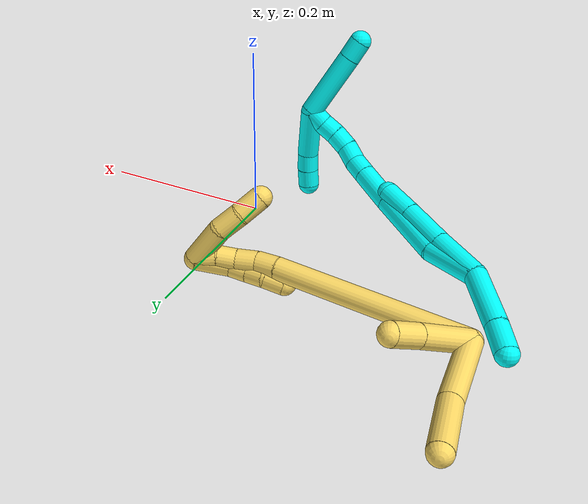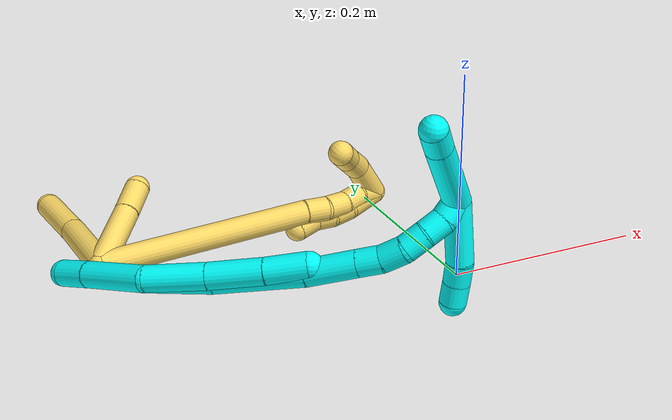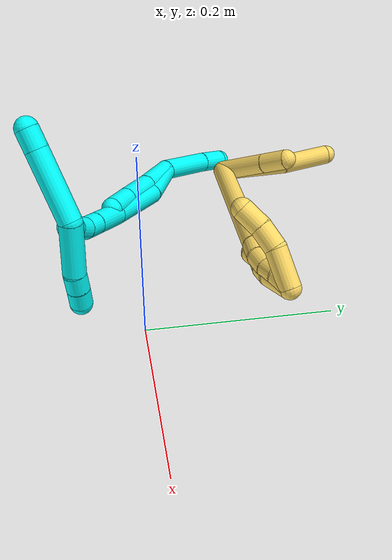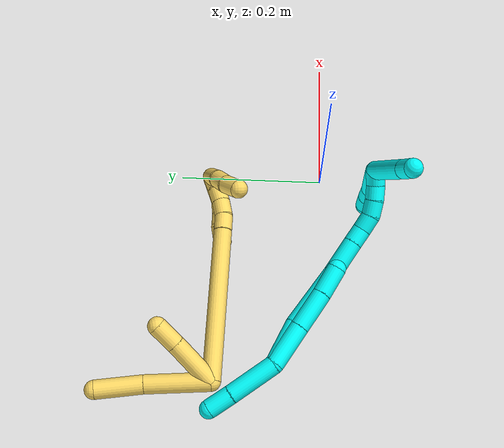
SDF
<sdf version="1.7">
 <world name="default">
  <model name="3">
   <static>0</static>
   <link name="3">
    <collision name="collision-cylinder-e_1_2_8">
     <pose>0.025323 -0.012036 0.007532 1.01166 1.05978 0.627476</pose>
     <geometry><cylinder><radius>0.0125</radius><length>0.058064</length></cylinder></geometry>
     <surface>
      <friction><ode><mu>1.16</mu><mu2>1.16</mu2><slip1>0</slip1><slip2>0</slip2></ode></friction>
      <contact><ode><kp>1e+06</kp><kd>1</kd><max_vel>0</max_vel><min_depth>0.001</min_depth></ode></contact>
     </surface>
    </collision>
    <visual name="visual-cylinder-e_1_2_8">
     <pose>0.025323 -0.012036 0.007532 1.01166 1.05978 0.627476</pose>
     <geometry><cylinder><radius>0.0125</radius><length>0.058064</length></cylinder></geometry>
     <material><ambient>0.003922 1 0.996078 1</ambient></material>
    </visual>
    <collision name="collision-cylinder-e_2_8_9">
     <pose>0.07329 -0.034726 0.023024 0.92907 1.03976 0.558674</pose>
     <geometry><cylinder><radius>0.0125</radius><length>0.052521</length></cylinder></geometry>
     <surface>
      <friction><ode><mu>1.16</mu><mu2>1.16</mu2><slip1>0</slip1><slip2>0</slip2></ode></friction>
      <contact><ode><kp>1e+06</kp><kd>1</kd><max_vel>0</max_vel><min_depth>0.001</min_depth></ode></contact>
     </surface>
    </collision>
    <visual name="visual-cylinder-e_2_8_9">
     <pose>0.07329 -0.034726 0.023024 0.92907 1.03976 0.558674</pose>
     <geometry><cylinder><radius>0.0125</radius><length>0.052521</length></cylinder></geometry>
     <material><ambient>0.003922 1 0.996078 1</ambient></material>
    </visual>
    <collision name="collision-cylinder-e_3_9_6">
     <pose>0.113287 -0.05231 0.037248 0.835982 1.07694 0.518693</pose>
     <geometry><cylinder><radius>0.0125</radius><length>0.039415</length></cylinder></geometry>
     <surface>
      <friction><ode><mu>1.16</mu><mu2>1.16</mu2><slip1>0</slip1><slip2>0</slip2></ode></friction>
      <contact><ode><kp>1e+06</kp><kd>1</kd><max_vel>0</max_vel><min_depth>0.001</min_depth></ode></contact>
     </surface>
    </collision>
    <visual name="visual-cylinder-e_3_9_6">
     <pose>0.113287 -0.05231 0.037248 0.835982 1.07694 0.518693</pose>
     <geometry><cylinder><radius>0.0125</radius><length>0.039415</length></cylinder></geometry>
     <material><ambient>0.003922 1 0.996078 1</ambient></material>
    </visual>
    <collision name="collision-cylinder-e_1_2_10">
     <pose>-0.020616 0.02286 -0.012898 -2.08447 -0.66581 1.06917</pose>
     <geometry><cylinder><radius>0.0125</radius><length>0.066752</length></cylinder></geometry>
     <surface>
      <friction><ode><mu>1.16</mu><mu2>1.16</mu2><slip1>0</slip1><slip2>0</slip2></ode></friction>
      <contact><ode><kp>1e+06</kp><kd>1</kd><max_vel>0</max_vel><min_depth>0.001</min_depth></ode></contact>
     </surface>
    </collision>
    <visual name="visual-cylinder-e_1_2_10">
     <pose>-0.020616 0.02286 -0.012898 -2.08447 -0.66581 1.06917</pose>
     <geometry><cylinder><radius>0.0125</radius><length>0.066752</length></cylinder></geometry>
     <material><ambient>0.003922 1 0.996078 1</ambient></material>
    </visual>
    <collision name="collision-cylinder-e_2_10_5">
     <pose>-0.05097 0.057222 -0.032812 -2.11855 -0.625836 1.04572</pose>
     <geometry><cylinder><radius>0.0125</radius><length>0.033248</length></cylinder></geometry>
     <surface>
      <friction><ode><mu>1.16</mu><mu2>1.16</mu2><slip1>0</slip1><slip2>0</slip2></ode></friction>
      <contact><ode><kp>1e+06</kp><kd>1</kd><max_vel>0</max_vel><min_depth>0.001</min_depth></ode></contact>
     </surface>
    </collision>
    <visual name="visual-cylinder-e_2_10_5">
     <pose>-0.05097 0.057222 -0.032812 -2.11855 -0.625836 1.04572</pose>
     <geometry><cylinder><radius>0.0125</radius><length>0.033248</length></cylinder></geometry>
     <material><ambient>0.003922 1 0.996078 1</ambient></material>
    </visual>
    <collision name="collision-cylinder-e_1_2_11">
     <pose>0.02867 -0.009951 0.002819 1.29476 1.22458 0.976299</pose>
     <geometry><cylinder><radius>0.0125</radius><length>0.060958</length></cylinder></geometry>
     <surface>
      <friction><ode><mu>1.16</mu><mu2>1.16</mu2><slip1>0</slip1><slip2>0</slip2></ode></friction>
      <contact><ode><kp>1e+06</kp><kd>1</kd><max_vel>0</max_vel><min_depth>0.001</min_depth></ode></contact>
     </surface>
    </collision>
    <visual name="visual-cylinder-e_1_2_11">
     <pose>0.02867 -0.009951 0.002819 1.29476 1.22458 0.976299</pose>
     <geometry><cylinder><radius>0.0125</radius><length>0.060958</length></cylinder></geometry>
     <material><ambient>0.003922 1 0.996078 1</ambient></material>
    </visual>
    <collision name="collision-cylinder-e_2_11_12">
     <pose>0.093212 -0.038764 0.019649 0.931894 0.990922 0.530716</pose>
     <geometry><cylinder><radius>0.0125</radius><length>0.085763</length></cylinder></geometry>
     <surface>
      <friction><ode><mu>1.16</mu><mu2>1.16</mu2><slip1>0</slip1><slip2>0</slip2></ode></friction>
      <contact><ode><kp>1e+06</kp><kd>1</kd><max_vel>0</max_vel><min_depth>0.001</min_depth></ode></contact>
     </surface>
    </collision>
    <visual name="visual-cylinder-e_2_11_12">
     <pose>0.093212 -0.038764 0.019649 0.931894 0.990922 0.530716</pose>
     <geometry><cylinder><radius>0.0125</radius><length>0.085763</length></cylinder></geometry>
     <material><ambient>0.003922 1 0.996078 1</ambient></material>
    </visual>
    <collision name="collision-cylinder-e_3_12_13">
     <pose>0.148886 -0.066614 0.043344 0.748189 0.982352 0.413968</pose>
     <geometry><cylinder><radius>0.0125</radius><length>0.047612</length></cylinder></geometry>
     <surface>
      <friction><ode><mu>1.16</mu><mu2>1.16</mu2><slip1>0</slip1><slip2>0</slip2></ode></friction>
      <contact><ode><kp>1e+06</kp><kd>1</kd><max_vel>0</max_vel><min_depth>0.001</min_depth></ode></contact>
     </surface>
    </collision>
    <visual name="visual-cylinder-e_3_12_13">
     <pose>0.148886 -0.066614 0.043344 0.748189 0.982352 0.413968</pose>
     <geometry><cylinder><radius>0.0125</radius><length>0.047612</length></cylinder></geometry>
     <material><ambient>0.003922 1 0.996078 1</ambient></material>
    </visual>
    <collision name="collision-cylinder-e_4_13_14">
     <pose>0.177772 -0.079928 0.057517 0.766842 0.969488 0.418665</pose>
     <geometry><cylinder><radius>0.0125</radius><length>0.022032</length></cylinder></geometry>
     <surface>
      <friction><ode><mu>1.16</mu><mu2>1.16</mu2><slip1>0</slip1><slip2>0</slip2></ode></friction>
      <contact><ode><kp>1e+06</kp><kd>1</kd><max_vel>0</max_vel><min_depth>0.001</min_depth></ode></contact>
     </surface>
    </collision>
    <visual name="visual-cylinder-e_4_13_14">
     <pose>0.177772 -0.079928 0.057517 0.766842 0.969488 0.418665</pose>
     <geometry><cylinder><radius>0.0125</radius><length>0.022032</length></cylinder></geometry>
     <material><ambient>0.003922 1 0.996078 1</ambient></material>
    </visual>
    <collision name="collision-cylinder-e_5_14_15">
     <pose>0.194886 -0.087643 0.068852 0.459745 0.810201 0.200025</pose>
     <geometry><cylinder><radius>0.0125</radius><length>0.022169</length></cylinder></geometry>
     <surface>
      <friction><ode><mu>1.16</mu><mu2>1.16</mu2><slip1>0</slip1><slip2>0</slip2></ode></friction>
      <contact><ode><kp>1e+06</kp><kd>1</kd><max_vel>0</max_vel><min_depth>0.001</min_depth></ode></contact>
     </surface>
    </collision>
    <visual name="visual-cylinder-e_5_14_15">
     <pose>0.194886 -0.087643 0.068852 0.459745 0.810201 0.200025</pose>
     <geometry><cylinder><radius>0.0125</radius><length>0.022169</length></cylinder></geometry>
     <material><ambient>0.003922 1 0.996078 1</ambient></material>
    </visual>
    <collision name="collision-cylinder-e_6_15_16">
     <pose>0.211259 -0.090682 0.082327 -0.053058 0.898822 -0.025596</pose>
     <geometry><cylinder><radius>0.0125</radius><length>0.021322</length></cylinder></geometry>
     <surface>
      <friction><ode><mu>1.16</mu><mu2>1.16</mu2><slip1>0</slip1><slip2>0</slip2></ode></friction>
      <contact><ode><kp>1e+06</kp><kd>1</kd><max_vel>0</max_vel><min_depth>0.001</min_depth></ode></contact>
     </surface>
    </collision>
    <visual name="visual-cylinder-e_6_15_16">
     <pose>0.211259 -0.090682 0.082327 -0.053058 0.898822 -0.025596</pose>
     <geometry><cylinder><radius>0.0125</radius><length>0.021322</length></cylinder></geometry>
     <material><ambient>0.003922 1 0.996078 1</ambient></material>
    </visual>
    <collision name="collision-cylinder-e_7_16_17">
     <pose>0.227948 -0.088816 0.094256 -0.278111 0.987013 -0.150284</pose>
     <geometry><cylinder><radius>0.0125</radius><length>0.020005</length></cylinder></geometry>
     <surface>
      <friction><ode><mu>1.16</mu><mu2>1.16</mu2><slip1>0</slip1><slip2>0</slip2></ode></friction>
      <contact><ode><kp>1e+06</kp><kd>1</kd><max_vel>0</max_vel><min_depth>0.001</min_depth></ode></contact>
     </surface>
    </collision>
    <visual name="visual-cylinder-e_7_16_17">
     <pose>0.227948 -0.088816 0.094256 -0.278111 0.987013 -0.150284</pose>
     <geometry><cylinder><radius>0.0125</radius><length>0.020005</length></cylinder></geometry>
     <material><ambient>0.003922 1 0.996078 1</ambient></material>
    </visual>
    <collision name="collision-cylinder-e_8_17_1">
     <pose>0.242881 -0.083907 0.106374 -0.462123 0.713123 -0.174817</pose>
     <geometry><cylinder><radius>0.0125</radius><length>0.020139</length></cylinder></geometry>
     <surface>
      <friction><ode><mu>1.16</mu><mu2>1.16</mu2><slip1>0</slip1><slip2>0</slip2></ode></friction>
      <contact><ode><kp>1e+06</kp><kd>1</kd><max_vel>0</max_vel><min_depth>0.001</min_depth></ode></contact>
     </surface>
    </collision>
    <visual name="visual-cylinder-e_8_17_1">
     <pose>0.242881 -0.083907 0.106374 -0.462123 0.713123 -0.174817</pose>
     <geometry><cylinder><radius>0.0125</radius><length>0.020139</length></cylinder></geometry>
     <material><ambient>0.003922 1 0.996078 1</ambient></material>
    </visual>
    <collision name="collision-cylinder-e_1_1_18">
     <pose>0.253194 -0.087694 0.084964 2.89244 0.127195 0.940947</pose>
     <geometry><cylinder><radius>0.0125</radius><length>0.058729</length></cylinder></geometry>
     <surface>
      <friction><ode><mu>1.16</mu><mu2>1.16</mu2><slip1>0</slip1><slip2>0</slip2></ode></friction>
      <contact><ode><kp>1e+06</kp><kd>1</kd><max_vel>0</max_vel><min_depth>0.001</min_depth></ode></contact>
     </surface>
    </collision>
    <visual name="visual-cylinder-e_1_1_18">
     <pose>0.253194 -0.087694 0.084964 2.89244 0.127195 0.940947</pose>
     <geometry><cylinder><radius>0.0125</radius><length>0.058729</length></cylinder></geometry>
     <material><ambient>0.003922 1 0.996078 1</ambient></material>
    </visual>
    <collision name="collision-cylinder-e_2_18_19">
     <pose>0.256719 -0.096238 0.046439 3.01008 -0.01926 -0.290429</pose>
     <geometry><cylinder><radius>0.0125</radius><length>0.020777</length></cylinder></geometry>
     <surface>
      <friction><ode><mu>1.16</mu><mu2>1.16</mu2><slip1>0</slip1><slip2>0</slip2></ode></friction>
      <contact><ode><kp>1e+06</kp><kd>1</kd><max_vel>0</max_vel><min_depth>0.001</min_depth></ode></contact>
     </surface>
    </collision>
    <visual name="visual-cylinder-e_2_18_19">
     <pose>0.256719 -0.096238 0.046439 3.01008 -0.01926 -0.290429</pose>
     <geometry><cylinder><radius>0.0125</radius><length>0.020777</length></cylinder></geometry>
     <material><ambient>0.003922 1 0.996078 1</ambient></material>
    </visual>
    <collision name="collision-cylinder-e_3_19_4">
     <pose>0.255846 -0.099308 0.026061 2.9737 -0.065627 -0.743908</pose>
     <geometry><cylinder><radius>0.0125</radius><length>0.020495</length></cylinder></geometry>
     <surface>
      <friction><ode><mu>1.16</mu><mu2>1.16</mu2><slip1>0</slip1><slip2>0</slip2></ode></friction>
      <contact><ode><kp>1e+06</kp><kd>1</kd><max_vel>0</max_vel><min_depth>0.001</min_depth></ode></contact>
     </surface>
    </collision>
    <visual name="visual-cylinder-e_3_19_4">
     <pose>0.255846 -0.099308 0.026061 2.9737 -0.065627 -0.743908</pose>
     <geometry><cylinder><radius>0.0125</radius><length>0.020495</length></cylinder></geometry>
     <material><ambient>0.003922 1 0.996078 1</ambient></material>
    </visual>
    <collision name="collision-cylinder-e_1_1_20">
     <pose>0.231598 -0.08729 0.14688 0.198568 -0.479552 -0.048696</pose>
     <geometry><cylinder><radius>0.0125</radius><length>0.077465</length></cylinder></geometry>
     <surface>
      <friction><ode><mu>1.16</mu><mu2>1.16</mu2><slip1>0</slip1><slip2>0</slip2></ode></friction>
      <contact><ode><kp>1e+06</kp><kd>1</kd><max_vel>0</max_vel><min_depth>0.001</min_depth></ode></contact>
     </surface>
    </collision>
    <visual name="visual-cylinder-e_1_1_20">
     <pose>0.231598 -0.08729 0.14688 0.198568 -0.479552 -0.048696</pose>
     <geometry><cylinder><radius>0.0125</radius><length>0.077465</length></cylinder></geometry>
     <material><ambient>0.003922 1 0.996078 1</ambient></material>
    </visual>
    <collision name="collision-cylinder-e_2_20_3">
     <pose>0.208794 -0.096051 0.190502 0.196962 -0.453196 -0.045551</pose>
     <geometry><cylinder><radius>0.0125</radius><length>0.022535</length></cylinder></geometry>
     <surface>
      <friction><ode><mu>1.16</mu><mu2>1.16</mu2><slip1>0</slip1><slip2>0</slip2></ode></friction>
      <contact><ode><kp>1e+06</kp><kd>1</kd><max_vel>0</max_vel><min_depth>0.001</min_depth></ode></contact>
     </surface>
    </collision>
    <visual name="visual-cylinder-e_2_20_3">
     <pose>0.208794 -0.096051 0.190502 0.196962 -0.453196 -0.045551</pose>
     <geometry><cylinder><radius>0.0125</radius><length>0.022535</length></cylinder></geometry>
     <material><ambient>0.003922 1 0.996078 1</ambient></material>
    </visual>
    <collision name="collision-sphere-3">
     <pose>0.203861 -0.098034 0.200437 0 -0 0</pose>
     <geometry><sphere><radius>0.0125</radius></sphere></geometry>
     <surface>
      <friction><ode><mu>1.16</mu><mu2>1.16</mu2><slip1>0</slip1><slip2>0</slip2></ode></friction>
      <contact><ode><kp>1e+06</kp><kd>1</kd><max_vel>0</max_vel><min_depth>0.001</min_depth></ode></contact>
     </surface>
    </collision>
    <visual name="visual-sphere-3">
     <pose>0.203861 -0.098034 0.200437 0 -0 0</pose>
     <geometry><sphere><radius>0.0125</radius></sphere></geometry>
     <material><ambient>0.003922 1 0.996078 1</ambient></material>
    </visual>
    <collision name="collision-sphere-20">
     <pose>0.213728 -0.094069 0.180568 0 -0 0</pose>
     <geometry><sphere><radius>0.0125</radius></sphere></geometry>
     <surface>
      <friction><ode><mu>1.16</mu><mu2>1.16</mu2><slip1>0</slip1><slip2>0</slip2></ode></friction>
      <contact><ode><kp>1e+06</kp><kd>1</kd><max_vel>0</max_vel><min_depth>0.001</min_depth></ode></contact>
     </surface>
    </collision>
    <visual name="visual-sphere-20">
     <pose>0.213728 -0.094069 0.180568 0 -0 0</pose>
     <geometry><sphere><radius>0.0125</radius></sphere></geometry>
     <material><ambient>0.003922 1 0.996078 1</ambient></material>
    </visual>
    <collision name="collision-sphere-4">
     <pose>0.255174 -0.101017 0.01598 0 -0 0</pose>
     <geometry><sphere><radius>0.0125</radius></sphere></geometry>
     <surface>
      <friction><ode><mu>1.16</mu><mu2>1.16</mu2><slip1>0</slip1><slip2>0</slip2></ode></friction>
      <contact><ode><kp>1e+06</kp><kd>1</kd><max_vel>0</max_vel><min_depth>0.001</min_depth></ode></contact>
     </surface>
    </collision>
    <visual name="visual-sphere-4">
     <pose>0.255174 -0.101017 0.01598 0 -0 0</pose>
     <geometry><sphere><radius>0.0125</radius></sphere></geometry>
     <material><ambient>0.003922 1 0.996078 1</ambient></material>
    </visual>
    <collision name="collision-sphere-5">
     <pose>-0.060708 0.068724 -0.039828 0 -0 0</pose>
     <geometry><sphere><radius>0.0125</radius></sphere></geometry>
     <surface>
      <friction><ode><mu>1.16</mu><mu2>1.16</mu2><slip1>0</slip1><slip2>0</slip2></ode></friction>
      <contact><ode><kp>1e+06</kp><kd>1</kd><max_vel>0</max_vel><min_depth>0.001</min_depth></ode></contact>
     </surface>
    </collision>
    <visual name="visual-sphere-5">
     <pose>-0.060708 0.068724 -0.039828 0 -0 0</pose>
     <geometry><sphere><radius>0.0125</radius></sphere></geometry>
     <material><ambient>0.003922 1 0.996078 1</ambient></material>
    </visual>
    <collision name="collision-sphere-10">
     <pose>-0.041233 0.04572 -0.025795 0 -0 0</pose>
     <geometry><sphere><radius>0.0125</radius></sphere></geometry>
     <surface>
      <friction><ode><mu>1.16</mu><mu2>1.16</mu2><slip1>0</slip1><slip2>0</slip2></ode></friction>
      <contact><ode><kp>1e+06</kp><kd>1</kd><max_vel>0</max_vel><min_depth>0.001</min_depth></ode></contact>
     </surface>
    </collision>
    <visual name="visual-sphere-10">
     <pose>-0.041233 0.04572 -0.025795 0 -0 0</pose>
     <geometry><sphere><radius>0.0125</radius></sphere></geometry>
     <material><ambient>0.003922 1 0.996078 1</ambient></material>
    </visual>
    <collision name="collision-sphere-6">
     <pose>0.130639 -0.059242 0.043511 0 -0 0</pose>
     <geometry><sphere><radius>0.0125</radius></sphere></geometry>
     <surface>
      <friction><ode><mu>1.16</mu><mu2>1.16</mu2><slip1>0</slip1><slip2>0</slip2></ode></friction>
      <contact><ode><kp>1e+06</kp><kd>1</kd><max_vel>0</max_vel><min_depth>0.001</min_depth></ode></contact>
     </surface>
    </collision>
    <visual name="visual-sphere-6">
     <pose>0.130639 -0.059242 0.043511 0 -0 0</pose>
     <geometry><sphere><radius>0.0125</radius></sphere></geometry>
     <material><ambient>0.003922 1 0.996078 1</ambient></material>
    </visual>
    <collision name="collision-sphere-9">
     <pose>0.095934 -0.045379 0.030984 0 -0 0</pose>
     <geometry><sphere><radius>0.0125</radius></sphere></geometry>
     <surface>
      <friction><ode><mu>1.16</mu><mu2>1.16</mu2><slip1>0</slip1><slip2>0</slip2></ode></friction>
      <contact><ode><kp>1e+06</kp><kd>1</kd><max_vel>0</max_vel><min_depth>0.001</min_depth></ode></contact>
     </surface>
    </collision>
    <visual name="visual-sphere-9">
     <pose>0.095934 -0.045379 0.030984 0 -0 0</pose>
     <geometry><sphere><radius>0.0125</radius></sphere></geometry>
     <material><ambient>0.003922 1 0.996078 1</ambient></material>
    </visual>
    <collision name="collision-sphere-2">
     <geometry><sphere><radius>0.0125</radius></sphere></geometry>
     <surface>
      <friction><ode><mu>1.16</mu><mu2>1.16</mu2><slip1>0</slip1><slip2>0</slip2></ode></friction>
      <contact><ode><kp>1e+06</kp><kd>1</kd><max_vel>0</max_vel><min_depth>0.001</min_depth></ode></contact>
     </surface>
    </collision>
    <visual name="visual-sphere-2">
     <geometry><sphere><radius>0.0125</radius></sphere></geometry>
     <material><ambient>0.003922 1 0.996078 1</ambient></material>
    </visual>
    <collision name="collision-sphere-19">
     <pose>0.256518 -0.0976 0.036143 0 -0 0</pose>
     <geometry><sphere><radius>0.0125</radius></sphere></geometry>
     <surface>
      <friction><ode><mu>1.16</mu><mu2>1.16</mu2><slip1>0</slip1><slip2>0</slip2></ode></friction>
      <contact><ode><kp>1e+06</kp><kd>1</kd><max_vel>0</max_vel><min_depth>0.001</min_depth></ode></contact>
     </surface>
    </collision>
    <visual name="visual-sphere-19">
     <pose>0.256518 -0.0976 0.036143 0 -0 0</pose>
     <geometry><sphere><radius>0.0125</radius></sphere></geometry>
     <material><ambient>0.003922 1 0.996078 1</ambient></material>
    </visual>
    <collision name="collision-sphere-8">
     <pose>0.050646 -0.024072 0.015063 0 -0 0</pose>
     <geometry><sphere><radius>0.0125</radius></sphere></geometry>
     <surface>
      <friction><ode><mu>1.16</mu><mu2>1.16</mu2><slip1>0</slip1><slip2>0</slip2></ode></friction>
      <contact><ode><kp>1e+06</kp><kd>1</kd><max_vel>0</max_vel><min_depth>0.001</min_depth></ode></contact>
     </surface>
    </collision>
    <visual name="visual-sphere-8">
     <pose>0.050646 -0.024072 0.015063 0 -0 0</pose>
     <geometry><sphere><radius>0.0125</radius></sphere></geometry>
     <material><ambient>0.003922 1 0.996078 1</ambient></material>
    </visual>
    <collision name="collision-sphere-11">
     <pose>0.057341 -0.019903 0.005638 0 -0 0</pose>
     <geometry><sphere><radius>0.0125</radius></sphere></geometry>
     <surface>
      <friction><ode><mu>1.16</mu><mu2>1.16</mu2><slip1>0</slip1><slip2>0</slip2></ode></friction>
      <contact><ode><kp>1e+06</kp><kd>1</kd><max_vel>0</max_vel><min_depth>0.001</min_depth></ode></contact>
     </surface>
    </collision>
    <visual name="visual-sphere-11">
     <pose>0.057341 -0.019903 0.005638 0 -0 0</pose>
     <geometry><sphere><radius>0.0125</radius></sphere></geometry>
     <material><ambient>0.003922 1 0.996078 1</ambient></material>
    </visual>
    <collision name="collision-sphere-12">
     <pose>0.129084 -0.057625 0.033659 0 -0 0</pose>
     <geometry><sphere><radius>0.0125</radius></sphere></geometry>
     <surface>
      <friction><ode><mu>1.16</mu><mu2>1.16</mu2><slip1>0</slip1><slip2>0</slip2></ode></friction>
      <contact><ode><kp>1e+06</kp><kd>1</kd><max_vel>0</max_vel><min_depth>0.001</min_depth></ode></contact>
     </surface>
    </collision>
    <visual name="visual-sphere-12">
     <pose>0.129084 -0.057625 0.033659 0 -0 0</pose>
     <geometry><sphere><radius>0.0125</radius></sphere></geometry>
     <material><ambient>0.003922 1 0.996078 1</ambient></material>
    </visual>
    <collision name="collision-sphere-13">
     <pose>0.168688 -0.075604 0.053029 0 -0 0</pose>
     <geometry><sphere><radius>0.0125</radius></sphere></geometry>
     <surface>
      <friction><ode><mu>1.16</mu><mu2>1.16</mu2><slip1>0</slip1><slip2>0</slip2></ode></friction>
      <contact><ode><kp>1e+06</kp><kd>1</kd><max_vel>0</max_vel><min_depth>0.001</min_depth></ode></contact>
     </surface>
    </collision>
    <visual name="visual-sphere-13">
     <pose>0.168688 -0.075604 0.053029 0 -0 0</pose>
     <geometry><sphere><radius>0.0125</radius></sphere></geometry>
     <material><ambient>0.003922 1 0.996078 1</ambient></material>
    </visual>
    <collision name="collision-sphere-14">
     <pose>0.186856 -0.084253 0.062005 0 -0 0</pose>
     <geometry><sphere><radius>0.0125</radius></sphere></geometry>
     <surface>
      <friction><ode><mu>1.16</mu><mu2>1.16</mu2><slip1>0</slip1><slip2>0</slip2></ode></friction>
      <contact><ode><kp>1e+06</kp><kd>1</kd><max_vel>0</max_vel><min_depth>0.001</min_depth></ode></contact>
     </surface>
    </collision>
    <visual name="visual-sphere-14">
     <pose>0.186856 -0.084253 0.062005 0 -0 0</pose>
     <geometry><sphere><radius>0.0125</radius></sphere></geometry>
     <material><ambient>0.003922 1 0.996078 1</ambient></material>
    </visual>
    <collision name="collision-sphere-15">
     <pose>0.202916 -0.091034 0.0757 0 -0 0</pose>
     <geometry><sphere><radius>0.0125</radius></sphere></geometry>
     <surface>
      <friction><ode><mu>1.16</mu><mu2>1.16</mu2><slip1>0</slip1><slip2>0</slip2></ode></friction>
      <contact><ode><kp>1e+06</kp><kd>1</kd><max_vel>0</max_vel><min_depth>0.001</min_depth></ode></contact>
     </surface>
    </collision>
    <visual name="visual-sphere-15">
     <pose>0.202916 -0.091034 0.0757 0 -0 0</pose>
     <geometry><sphere><radius>0.0125</radius></sphere></geometry>
     <material><ambient>0.003922 1 0.996078 1</ambient></material>
    </visual>
    <collision name="collision-sphere-16">
     <pose>0.219602 -0.09033 0.088955 0 -0 0</pose>
     <geometry><sphere><radius>0.0125</radius></sphere></geometry>
     <surface>
      <friction><ode><mu>1.16</mu><mu2>1.16</mu2><slip1>0</slip1><slip2>0</slip2></ode></friction>
      <contact><ode><kp>1e+06</kp><kd>1</kd><max_vel>0</max_vel><min_depth>0.001</min_depth></ode></contact>
     </surface>
    </collision>
    <visual name="visual-sphere-16">
     <pose>0.219602 -0.09033 0.088955 0 -0 0</pose>
     <geometry><sphere><radius>0.0125</radius></sphere></geometry>
     <material><ambient>0.003922 1 0.996078 1</ambient></material>
    </visual>
    <collision name="collision-sphere-17">
     <pose>0.236294 -0.087303 0.099557 0 -0 0</pose>
     <geometry><sphere><radius>0.0125</radius></sphere></geometry>
     <surface>
      <friction><ode><mu>1.16</mu><mu2>1.16</mu2><slip1>0</slip1><slip2>0</slip2></ode></friction>
      <contact><ode><kp>1e+06</kp><kd>1</kd><max_vel>0</max_vel><min_depth>0.001</min_depth></ode></contact>
     </surface>
    </collision>
    <visual name="visual-sphere-17">
     <pose>0.236294 -0.087303 0.099557 0 -0 0</pose>
     <geometry><sphere><radius>0.0125</radius></sphere></geometry>
     <material><ambient>0.003922 1 0.996078 1</ambient></material>
    </visual>
    <collision name="collision-sphere-1">
     <pose>0.249469 -0.080511 0.113191 0 -0 0</pose>
     <geometry><sphere><radius>0.0125</radius></sphere></geometry>
     <surface>
      <friction><ode><mu>1.16</mu><mu2>1.16</mu2><slip1>0</slip1><slip2>0</slip2></ode></friction>
      <contact><ode><kp>1e+06</kp><kd>1</kd><max_vel>0</max_vel><min_depth>0.001</min_depth></ode></contact>
     </surface>
    </collision>
    <visual name="visual-sphere-1">
     <pose>0.249469 -0.080511 0.113191 0 -0 0</pose>
     <geometry><sphere><radius>0.0125</radius></sphere></geometry>
     <material><ambient>0.003922 1 0.996078 1</ambient></material>
    </visual>
    <collision name="collision-sphere-18">
     <pose>0.256919 -0.094876 0.056736 0 -0 0</pose>
     <geometry><sphere><radius>0.0125</radius></sphere></geometry>
     <surface>
      <friction><ode><mu>1.16</mu><mu2>1.16</mu2><slip1>0</slip1><slip2>0</slip2></ode></friction>
      <contact><ode><kp>1e+06</kp><kd>1</kd><max_vel>0</max_vel><min_depth>0.001</min_depth></ode></contact>
     </surface>
    </collision>
    <visual name="visual-sphere-18">
     <pose>0.256919 -0.094876 0.056736 0 -0 0</pose>
     <geometry><sphere><radius>0.0125</radius></sphere></geometry>
     <material><ambient>0.003922 1 0.996078 1</ambient></material>
    </visual>
    <inertial>
     <pose>0.125107 -0.047299 0.04776 0 -0 0</pose>
     <mass>0.75</mass>
     <inertia>
      <ixx>0.000212</ixx>
      <ixy>0</ixy>
      <ixz>0</ixz>
      <iyy>0.000216</iyy>
      <iyz>0</iyz>
      <izz>-2.8e-05</izz>
     </inertia>
    </inertial>
   </link>
   <pose>-0.286629 0.059099 0.032212 0.22792 0.048693 -0.081453</pose>
  </model>
  <model name="5">
   <static>0</static>
   <link name="5">
    <collision name="collision-cylinder-e_1_2_8">
     <pose>-0.007231 0.013321 0.040654 -0.316635 -0.167438 0.026793</pose>
     <geometry><cylinder><radius>0.0125</radius><length>0.086776</length></cylinder></geometry>
     <surface>
      <friction><ode><mu>1.16</mu><mu2>1.16</mu2><slip1>0</slip1><slip2>0</slip2></ode></friction>
      <contact><ode><kp>1e+06</kp><kd>1</kd><max_vel>0</max_vel><min_depth>0.001</min_depth></ode></contact>
     </surface>
    </collision>
    <visual name="visual-cylinder-e_1_2_8">
     <pose>-0.007231 0.013321 0.040654 -0.316635 -0.167438 0.026793</pose>
     <geometry><cylinder><radius>0.0125</radius><length>0.086776</length></cylinder></geometry>
     <material><ambient>1 0.858824 0.4 1</ambient></material>
    </visual>
    <collision name="collision-cylinder-e_2_8_6">
     <pose>-0.019409 0.032738 0.11193 -0.19652 -0.157153 0.015523</pose>
     <geometry><cylinder><radius>0.0125</radius><length>0.063224</length></cylinder></geometry>
     <surface>
      <friction><ode><mu>1.16</mu><mu2>1.16</mu2><slip1>0</slip1><slip2>0</slip2></ode></friction>
      <contact><ode><kp>1e+06</kp><kd>1</kd><max_vel>0</max_vel><min_depth>0.001</min_depth></ode></contact>
     </surface>
    </collision>
    <visual name="visual-cylinder-e_2_8_6">
     <pose>-0.019409 0.032738 0.11193 -0.19652 -0.157153 0.015523</pose>
     <geometry><cylinder><radius>0.0125</radius><length>0.063224</length></cylinder></geometry>
     <material><ambient>1 0.858824 0.4 1</ambient></material>
    </visual>
    <collision name="collision-cylinder-e_1_2_9">
     <pose>0.019387 0.017445 0.02084 -0.69696 0.619619 -0.231562</pose>
     <geometry><cylinder><radius>0.0125</radius><length>0.066768</length></cylinder></geometry>
     <surface>
      <friction><ode><mu>1.16</mu><mu2>1.16</mu2><slip1>0</slip1><slip2>0</slip2></ode></friction>
      <contact><ode><kp>1e+06</kp><kd>1</kd><max_vel>0</max_vel><min_depth>0.001</min_depth></ode></contact>
     </surface>
    </collision>
    <visual name="visual-cylinder-e_1_2_9">
     <pose>0.019387 0.017445 0.02084 -0.69696 0.619619 -0.231562</pose>
     <geometry><cylinder><radius>0.0125</radius><length>0.066768</length></cylinder></geometry>
     <material><ambient>1 0.858824 0.4 1</ambient></material>
    </visual>
    <collision name="collision-cylinder-e_2_9_5">
     <pose>0.047932 0.043504 0.052544 -0.670371 0.583731 -0.208549</pose>
     <geometry><cylinder><radius>0.0125</radius><length>0.033232</length></cylinder></geometry>
     <surface>
      <friction><ode><mu>1.16</mu><mu2>1.16</mu2><slip1>0</slip1><slip2>0</slip2></ode></friction>
      <contact><ode><kp>1e+06</kp><kd>1</kd><max_vel>0</max_vel><min_depth>0.001</min_depth></ode></contact>
     </surface>
    </collision>
    <visual name="visual-cylinder-e_2_9_5">
     <pose>0.047932 0.043504 0.052544 -0.670371 0.583731 -0.208549</pose>
     <geometry><cylinder><radius>0.0125</radius><length>0.033232</length></cylinder></geometry>
     <material><ambient>1 0.858824 0.4 1</ambient></material>
    </visual>
    <collision name="collision-cylinder-e_1_2_10">
     <pose>0.064565 0.078553 -0.024792 -1.87651 0.664795 -0.880261</pose>
     <geometry><cylinder><radius>0.0125</radius><length>0.209322</length></cylinder></geometry>
     <surface>
      <friction><ode><mu>1.16</mu><mu2>1.16</mu2><slip1>0</slip1><slip2>0</slip2></ode></friction>
      <contact><ode><kp>1e+06</kp><kd>1</kd><max_vel>0</max_vel><min_depth>0.001</min_depth></ode></contact>
     </surface>
    </collision>
    <visual name="visual-cylinder-e_1_2_10">
     <pose>0.064565 0.078553 -0.024792 -1.87651 0.664795 -0.880261</pose>
     <geometry><cylinder><radius>0.0125</radius><length>0.209322</length></cylinder></geometry>
     <material><ambient>1 0.858824 0.4 1</ambient></material>
    </visual>
    <collision name="collision-cylinder-e_2_10_11">
     <pose>0.135494 0.166382 -0.05256 -1.88129 0.578665 -0.77503</pose>
     <geometry><cylinder><radius>0.0125</radius><length>0.023271</length></cylinder></geometry>
     <surface>
      <friction><ode><mu>1.16</mu><mu2>1.16</mu2><slip1>0</slip1><slip2>0</slip2></ode></friction>
      <contact><ode><kp>1e+06</kp><kd>1</kd><max_vel>0</max_vel><min_depth>0.001</min_depth></ode></contact>
     </surface>
    </collision>
    <visual name="visual-cylinder-e_2_10_11">
     <pose>0.135494 0.166382 -0.05256 -1.88129 0.578665 -0.77503</pose>
     <geometry><cylinder><radius>0.0125</radius><length>0.023271</length></cylinder></geometry>
     <material><ambient>1 0.858824 0.4 1</ambient></material>
    </visual>
    <collision name="collision-cylinder-e_3_11_12">
     <pose>0.14759 0.185764 -0.055931 -1.60984 0.515649 -0.535237</pose>
     <geometry><cylinder><radius>0.0125</radius><length>0.023252</length></cylinder></geometry>
     <surface>
      <friction><ode><mu>1.16</mu><mu2>1.16</mu2><slip1>0</slip1><slip2>0</slip2></ode></friction>
      <contact><ode><kp>1e+06</kp><kd>1</kd><max_vel>0</max_vel><min_depth>0.001</min_depth></ode></contact>
     </surface>
    </collision>
    <visual name="visual-cylinder-e_3_11_12">
     <pose>0.14759 0.185764 -0.055931 -1.60984 0.515649 -0.535237</pose>
     <geometry><cylinder><radius>0.0125</radius><length>0.023252</length></cylinder></geometry>
     <material><ambient>1 0.858824 0.4 1</ambient></material>
    </visual>
    <collision name="collision-cylinder-e_4_12_13">
     <pose>0.159402 0.204193 -0.055164 -1.43213 0.62628 -0.549247</pose>
     <geometry><cylinder><radius>0.0125</radius><length>0.020742</length></cylinder></geometry>
     <surface>
      <friction><ode><mu>1.16</mu><mu2>1.16</mu2><slip1>0</slip1><slip2>0</slip2></ode></friction>
      <contact><ode><kp>1e+06</kp><kd>1</kd><max_vel>0</max_vel><min_depth>0.001</min_depth></ode></contact>
     </surface>
    </collision>
    <visual name="visual-cylinder-e_4_12_13">
     <pose>0.159402 0.204193 -0.055164 -1.43213 0.62628 -0.549247</pose>
     <geometry><cylinder><radius>0.0125</radius><length>0.020742</length></cylinder></geometry>
     <material><ambient>1 0.858824 0.4 1</ambient></material>
    </visual>
    <collision name="collision-cylinder-e_5_13_1">
     <pose>0.16964 0.223402 -0.052907 -1.47046 0.363247 -0.329169</pose>
     <geometry><cylinder><radius>0.0125</radius><length>0.023412</length></cylinder></geometry>
     <surface>
      <friction><ode><mu>1.16</mu><mu2>1.16</mu2><slip1>0</slip1><slip2>0</slip2></ode></friction>
      <contact><ode><kp>1e+06</kp><kd>1</kd><max_vel>0</max_vel><min_depth>0.001</min_depth></ode></contact>
     </surface>
    </collision>
    <visual name="visual-cylinder-e_5_13_1">
     <pose>0.16964 0.223402 -0.052907 -1.47046 0.363247 -0.329169</pose>
     <geometry><cylinder><radius>0.0125</radius><length>0.023412</length></cylinder></geometry>
     <material><ambient>1 0.858824 0.4 1</ambient></material>
    </visual>
    <collision name="collision-cylinder-e_1_1_14">
     <pose>0.162267 0.219459 -0.054922 1.7776 -0.650552 -0.787348</pose>
     <geometry><cylinder><radius>0.0125</radius><length>0.038086</length></cylinder></geometry>
     <surface>
      <friction><ode><mu>1.16</mu><mu2>1.16</mu2><slip1>0</slip1><slip2>0</slip2></ode></friction>
      <contact><ode><kp>1e+06</kp><kd>1</kd><max_vel>0</max_vel><min_depth>0.001</min_depth></ode></contact>
     </surface>
    </collision>
    <visual name="visual-cylinder-e_1_1_14">
     <pose>0.162267 0.219459 -0.054922 1.7776 -0.650552 -0.787348</pose>
     <geometry><cylinder><radius>0.0125</radius><length>0.038086</length></cylinder></geometry>
     <material><ambient>1 0.858824 0.4 1</ambient></material>
    </visual>
    <collision name="collision-cylinder-e_2_14_15">
     <pose>0.144045 0.197127 -0.057381 1.484 -0.72632 -0.670468</pose>
     <geometry><cylinder><radius>0.0125</radius><length>0.020143</length></cylinder></geometry>
     <surface>
      <friction><ode><mu>1.16</mu><mu2>1.16</mu2><slip1>0</slip1><slip2>0</slip2></ode></friction>
      <contact><ode><kp>1e+06</kp><kd>1</kd><max_vel>0</max_vel><min_depth>0.001</min_depth></ode></contact>
     </surface>
    </collision>
    <visual name="visual-cylinder-e_2_14_15">
     <pose>0.144045 0.197127 -0.057381 1.484 -0.72632 -0.670468</pose>
     <geometry><cylinder><radius>0.0125</radius><length>0.020143</length></cylinder></geometry>
     <material><ambient>1 0.858824 0.4 1</ambient></material>
    </visual>
    <collision name="collision-cylinder-e_3_15_16">
     <pose>0.13163 0.181801 -0.054243 1.26323 -0.608988 -0.451975</pose>
     <geometry><cylinder><radius>0.0125</radius><length>0.02002</length></cylinder></geometry>
     <surface>
      <friction><ode><mu>1.16</mu><mu2>1.16</mu2><slip1>0</slip1><slip2>0</slip2></ode></friction>
      <contact><ode><kp>1e+06</kp><kd>1</kd><max_vel>0</max_vel><min_depth>0.001</min_depth></ode></contact>
     </surface>
    </collision>
    <visual name="visual-cylinder-e_3_15_16">
     <pose>0.13163 0.181801 -0.054243 1.26323 -0.608988 -0.451975</pose>
     <geometry><cylinder><radius>0.0125</radius><length>0.02002</length></cylinder></geometry>
     <material><ambient>1 0.858824 0.4 1</ambient></material>
    </visual>
    <collision name="collision-cylinder-e_4_16_4">
     <pose>0.11818 0.166323 -0.051969 1.59845 -0.789886 -0.809724</pose>
     <geometry><cylinder><radius>0.0125</radius><length>0.021751</length></cylinder></geometry>
     <surface>
      <friction><ode><mu>1.16</mu><mu2>1.16</mu2><slip1>0</slip1><slip2>0</slip2></ode></friction>
      <contact><ode><kp>1e+06</kp><kd>1</kd><max_vel>0</max_vel><min_depth>0.001</min_depth></ode></contact>
     </surface>
    </collision>
    <visual name="visual-cylinder-e_4_16_4">
     <pose>0.11818 0.166323 -0.051969 1.59845 -0.789886 -0.809724</pose>
     <geometry><cylinder><radius>0.0125</radius><length>0.021751</length></cylinder></geometry>
     <material><ambient>1 0.858824 0.4 1</ambient></material>
    </visual>
    <collision name="collision-cylinder-e_1_1_17">
     <pose>0.182701 0.213603 -0.048962 1.43396 0.402945 0.352401</pose>
     <geometry><cylinder><radius>0.0125</radius><length>0.045399</length></cylinder></geometry>
     <surface>
      <friction><ode><mu>1.16</mu><mu2>1.16</mu2><slip1>0</slip1><slip2>0</slip2></ode></friction>
      <contact><ode><kp>1e+06</kp><kd>1</kd><max_vel>0</max_vel><min_depth>0.001</min_depth></ode></contact>
     </surface>
    </collision>
    <visual name="visual-cylinder-e_1_1_17">
     <pose>0.182701 0.213603 -0.048962 1.43396 0.402945 0.352401</pose>
     <geometry><cylinder><radius>0.0125</radius><length>0.045399</length></cylinder></geometry>
     <material><ambient>1 0.858824 0.4 1</ambient></material>
    </visual>
    <collision name="collision-cylinder-e_2_17_18">
     <pose>0.19433 0.179759 -0.04742 1.66975 0.203448 0.224477</pose>
     <geometry><cylinder><radius>0.0125</radius><length>0.027002</length></cylinder></geometry>
     <surface>
      <friction><ode><mu>1.16</mu><mu2>1.16</mu2><slip1>0</slip1><slip2>0</slip2></ode></friction>
      <contact><ode><kp>1e+06</kp><kd>1</kd><max_vel>0</max_vel><min_depth>0.001</min_depth></ode></contact>
     </surface>
    </collision>
    <visual name="visual-cylinder-e_2_17_18">
     <pose>0.19433 0.179759 -0.04742 1.66975 0.203448 0.224477</pose>
     <geometry><cylinder><radius>0.0125</radius><length>0.027002</length></cylinder></geometry>
     <material><ambient>1 0.858824 0.4 1</ambient></material>
    </visual>
    <collision name="collision-cylinder-e_3_18_3">
     <pose>0.200072 0.153743 -0.052728 1.87248 0.220232 0.298166</pose>
     <geometry><cylinder><radius>0.0125</radius><length>0.027598</length></cylinder></geometry>
     <surface>
      <friction><ode><mu>1.16</mu><mu2>1.16</mu2><slip1>0</slip1><slip2>0</slip2></ode></friction>
      <contact><ode><kp>1e+06</kp><kd>1</kd><max_vel>0</max_vel><min_depth>0.001</min_depth></ode></contact>
     </surface>
    </collision>
    <visual name="visual-cylinder-e_3_18_3">
     <pose>0.200072 0.153743 -0.052728 1.87248 0.220232 0.298166</pose>
     <geometry><cylinder><radius>0.0125</radius><length>0.027598</length></cylinder></geometry>
     <material><ambient>1 0.858824 0.4 1</ambient></material>
    </visual>
    <collision name="collision-sphere-3">
     <pose>0.203087 0.140885 -0.056729 0 -0 0</pose>
     <geometry><sphere><radius>0.0125</radius></sphere></geometry>
     <surface>
      <friction><ode><mu>1.16</mu><mu2>1.16</mu2><slip1>0</slip1><slip2>0</slip2></ode></friction>
      <contact><ode><kp>1e+06</kp><kd>1</kd><max_vel>0</max_vel><min_depth>0.001</min_depth></ode></contact>
     </surface>
    </collision>
    <visual name="visual-sphere-3">
     <pose>0.203087 0.140885 -0.056729 0 -0 0</pose>
     <geometry><sphere><radius>0.0125</radius></sphere></geometry>
     <material><ambient>1 0.858824 0.4 1</ambient></material>
    </visual>
    <collision name="collision-sphere-10">
     <pose>0.129131 0.157107 -0.049584 0 -0 0</pose>
     <geometry><sphere><radius>0.0125</radius></sphere></geometry>
     <surface>
      <friction><ode><mu>1.16</mu><mu2>1.16</mu2><slip1>0</slip1><slip2>0</slip2></ode></friction>
      <contact><ode><kp>1e+06</kp><kd>1</kd><max_vel>0</max_vel><min_depth>0.001</min_depth></ode></contact>
     </surface>
    </collision>
    <visual name="visual-sphere-10">
     <pose>0.129131 0.157107 -0.049584 0 -0 0</pose>
     <geometry><sphere><radius>0.0125</radius></sphere></geometry>
     <material><ambient>1 0.858824 0.4 1</ambient></material>
    </visual>
    <collision name="collision-sphere-5">
     <pose>0.057089 0.052118 0.063408 0 -0 0</pose>
     <geometry><sphere><radius>0.0125</radius></sphere></geometry>
     <surface>
      <friction><ode><mu>1.16</mu><mu2>1.16</mu2><slip1>0</slip1><slip2>0</slip2></ode></friction>
      <contact><ode><kp>1e+06</kp><kd>1</kd><max_vel>0</max_vel><min_depth>0.001</min_depth></ode></contact>
     </surface>
    </collision>
    <visual name="visual-sphere-5">
     <pose>0.057089 0.052118 0.063408 0 -0 0</pose>
     <geometry><sphere><radius>0.0125</radius></sphere></geometry>
     <material><ambient>1 0.858824 0.4 1</ambient></material>
    </visual>
    <collision name="collision-sphere-6">
     <pose>-0.024357 0.038834 0.142552 0 -0 0</pose>
     <geometry><sphere><radius>0.0125</radius></sphere></geometry>
     <surface>
      <friction><ode><mu>1.16</mu><mu2>1.16</mu2><slip1>0</slip1><slip2>0</slip2></ode></friction>
      <contact><ode><kp>1e+06</kp><kd>1</kd><max_vel>0</max_vel><min_depth>0.001</min_depth></ode></contact>
     </surface>
    </collision>
    <visual name="visual-sphere-6">
     <pose>-0.024357 0.038834 0.142552 0 -0 0</pose>
     <geometry><sphere><radius>0.0125</radius></sphere></geometry>
     <material><ambient>1 0.858824 0.4 1</ambient></material>
    </visual>
    <collision name="collision-sphere-9">
     <pose>0.038774 0.034891 0.04168 0 -0 0</pose>
     <geometry><sphere><radius>0.0125</radius></sphere></geometry>
     <surface>
      <friction><ode><mu>1.16</mu><mu2>1.16</mu2><slip1>0</slip1><slip2>0</slip2></ode></friction>
      <contact><ode><kp>1e+06</kp><kd>1</kd><max_vel>0</max_vel><min_depth>0.001</min_depth></ode></contact>
     </surface>
    </collision>
    <visual name="visual-sphere-9">
     <pose>0.038774 0.034891 0.04168 0 -0 0</pose>
     <geometry><sphere><radius>0.0125</radius></sphere></geometry>
     <material><ambient>1 0.858824 0.4 1</ambient></material>
    </visual>
    <collision name="collision-sphere-2">
     <geometry><sphere><radius>0.0125</radius></sphere></geometry>
     <surface>
      <friction><ode><mu>1.16</mu><mu2>1.16</mu2><slip1>0</slip1><slip2>0</slip2></ode></friction>
      <contact><ode><kp>1e+06</kp><kd>1</kd><max_vel>0</max_vel><min_depth>0.001</min_depth></ode></contact>
     </surface>
    </collision>
    <visual name="visual-sphere-2">
     <geometry><sphere><radius>0.0125</radius></sphere></geometry>
     <material><ambient>1 0.858824 0.4 1</ambient></material>
    </visual>
    <collision name="collision-sphere-8">
     <pose>-0.014462 0.026642 0.081309 0 -0 0</pose>
     <geometry><sphere><radius>0.0125</radius></sphere></geometry>
     <surface>
      <friction><ode><mu>1.16</mu><mu2>1.16</mu2><slip1>0</slip1><slip2>0</slip2></ode></friction>
      <contact><ode><kp>1e+06</kp><kd>1</kd><max_vel>0</max_vel><min_depth>0.001</min_depth></ode></contact>
     </surface>
    </collision>
    <visual name="visual-sphere-8">
     <pose>-0.014462 0.026642 0.081309 0 -0 0</pose>
     <geometry><sphere><radius>0.0125</radius></sphere></geometry>
     <material><ambient>1 0.858824 0.4 1</ambient></material>
    </visual>
    <collision name="collision-sphere-11">
     <pose>0.141858 0.175658 -0.055536 0 -0 0</pose>
     <geometry><sphere><radius>0.0125</radius></sphere></geometry>
     <surface>
      <friction><ode><mu>1.16</mu><mu2>1.16</mu2><slip1>0</slip1><slip2>0</slip2></ode></friction>
      <contact><ode><kp>1e+06</kp><kd>1</kd><max_vel>0</max_vel><min_depth>0.001</min_depth></ode></contact>
     </surface>
    </collision>
    <visual name="visual-sphere-11">
     <pose>0.141858 0.175658 -0.055536 0 -0 0</pose>
     <geometry><sphere><radius>0.0125</radius></sphere></geometry>
     <material><ambient>1 0.858824 0.4 1</ambient></material>
    </visual>
    <collision name="collision-sphere-12">
     <pose>0.153323 0.195871 -0.056326 0 -0 0</pose>
     <geometry><sphere><radius>0.0125</radius></sphere></geometry>
     <surface>
      <friction><ode><mu>1.16</mu><mu2>1.16</mu2><slip1>0</slip1><slip2>0</slip2></ode></friction>
      <contact><ode><kp>1e+06</kp><kd>1</kd><max_vel>0</max_vel><min_depth>0.001</min_depth></ode></contact>
     </surface>
    </collision>
    <visual name="visual-sphere-12">
     <pose>0.153323 0.195871 -0.056326 0 -0 0</pose>
     <geometry><sphere><radius>0.0125</radius></sphere></geometry>
     <material><ambient>1 0.858824 0.4 1</ambient></material>
    </visual>
    <collision name="collision-sphere-13">
     <pose>0.165481 0.212515 -0.054003 0 -0 0</pose>
     <geometry><sphere><radius>0.0125</radius></sphere></geometry>
     <surface>
      <friction><ode><mu>1.16</mu><mu2>1.16</mu2><slip1>0</slip1><slip2>0</slip2></ode></friction>
      <contact><ode><kp>1e+06</kp><kd>1</kd><max_vel>0</max_vel><min_depth>0.001</min_depth></ode></contact>
     </surface>
    </collision>
    <visual name="visual-sphere-13">
     <pose>0.165481 0.212515 -0.054003 0 -0 0</pose>
     <geometry><sphere><radius>0.0125</radius></sphere></geometry>
     <material><ambient>1 0.858824 0.4 1</ambient></material>
    </visual>
    <collision name="collision-sphere-1">
     <pose>0.1738 0.23429 -0.051811 0 -0 0</pose>
     <geometry><sphere><radius>0.0125</radius></sphere></geometry>
     <surface>
      <friction><ode><mu>1.16</mu><mu2>1.16</mu2><slip1>0</slip1><slip2>0</slip2></ode></friction>
      <contact><ode><kp>1e+06</kp><kd>1</kd><max_vel>0</max_vel><min_depth>0.001</min_depth></ode></contact>
     </surface>
    </collision>
    <visual name="visual-sphere-1">
     <pose>0.1738 0.23429 -0.051811 0 -0 0</pose>
     <geometry><sphere><radius>0.0125</radius></sphere></geometry>
     <material><ambient>1 0.858824 0.4 1</ambient></material>
    </visual>
    <collision name="collision-sphere-18">
     <pose>0.197058 0.166601 -0.048727 0 -0 0</pose>
     <geometry><sphere><radius>0.0125</radius></sphere></geometry>
     <surface>
      <friction><ode><mu>1.16</mu><mu2>1.16</mu2><slip1>0</slip1><slip2>0</slip2></ode></friction>
      <contact><ode><kp>1e+06</kp><kd>1</kd><max_vel>0</max_vel><min_depth>0.001</min_depth></ode></contact>
     </surface>
    </collision>
    <visual name="visual-sphere-18">
     <pose>0.197058 0.166601 -0.048727 0 -0 0</pose>
     <geometry><sphere><radius>0.0125</radius></sphere></geometry>
     <material><ambient>1 0.858824 0.4 1</ambient></material>
    </visual>
    <collision name="collision-sphere-14">
     <pose>0.150734 0.204628 -0.058034 0 -0 0</pose>
     <geometry><sphere><radius>0.0125</radius></sphere></geometry>
     <surface>
      <friction><ode><mu>1.16</mu><mu2>1.16</mu2><slip1>0</slip1><slip2>0</slip2></ode></friction>
      <contact><ode><kp>1e+06</kp><kd>1</kd><max_vel>0</max_vel><min_depth>0.001</min_depth></ode></contact>
     </surface>
    </collision>
    <visual name="visual-sphere-14">
     <pose>0.150734 0.204628 -0.058034 0 -0 0</pose>
     <geometry><sphere><radius>0.0125</radius></sphere></geometry>
     <material><ambient>1 0.858824 0.4 1</ambient></material>
    </visual>
    <collision name="collision-sphere-15">
     <pose>0.137356 0.189626 -0.056729 0 -0 0</pose>
     <geometry><sphere><radius>0.0125</radius></sphere></geometry>
     <surface>
      <friction><ode><mu>1.16</mu><mu2>1.16</mu2><slip1>0</slip1><slip2>0</slip2></ode></friction>
      <contact><ode><kp>1e+06</kp><kd>1</kd><max_vel>0</max_vel><min_depth>0.001</min_depth></ode></contact>
     </surface>
    </collision>
    <visual name="visual-sphere-15">
     <pose>0.137356 0.189626 -0.056729 0 -0 0</pose>
     <geometry><sphere><radius>0.0125</radius></sphere></geometry>
     <material><ambient>1 0.858824 0.4 1</ambient></material>
    </visual>
    <collision name="collision-sphere-16">
     <pose>0.125904 0.173976 -0.051757 0 -0 0</pose>
     <geometry><sphere><radius>0.0125</radius></sphere></geometry>
     <surface>
      <friction><ode><mu>1.16</mu><mu2>1.16</mu2><slip1>0</slip1><slip2>0</slip2></ode></friction>
      <contact><ode><kp>1e+06</kp><kd>1</kd><max_vel>0</max_vel><min_depth>0.001</min_depth></ode></contact>
     </surface>
    </collision>
    <visual name="visual-sphere-16">
     <pose>0.125904 0.173976 -0.051757 0 -0 0</pose>
     <geometry><sphere><radius>0.0125</radius></sphere></geometry>
     <material><ambient>1 0.858824 0.4 1</ambient></material>
    </visual>
    <collision name="collision-sphere-4">
     <pose>0.110455 0.15867 -0.052181 0 -0 0</pose>
     <geometry><sphere><radius>0.0125</radius></sphere></geometry>
     <surface>
      <friction><ode><mu>1.16</mu><mu2>1.16</mu2><slip1>0</slip1><slip2>0</slip2></ode></friction>
      <contact><ode><kp>1e+06</kp><kd>1</kd><max_vel>0</max_vel><min_depth>0.001</min_depth></ode></contact>
     </surface>
    </collision>
    <visual name="visual-sphere-4">
     <pose>0.110455 0.15867 -0.052181 0 -0 0</pose>
     <geometry><sphere><radius>0.0125</radius></sphere></geometry>
     <material><ambient>1 0.858824 0.4 1</ambient></material>
    </visual>
    <collision name="collision-sphere-17">
     <pose>0.191602 0.192917 -0.046114 0 -0 0</pose>
     <geometry><sphere><radius>0.0125</radius></sphere></geometry>
     <surface>
      <friction><ode><mu>1.16</mu><mu2>1.16</mu2><slip1>0</slip1><slip2>0</slip2></ode></friction>
      <contact><ode><kp>1e+06</kp><kd>1</kd><max_vel>0</max_vel><min_depth>0.001</min_depth></ode></contact>
     </surface>
    </collision>
    <visual name="visual-sphere-17">
     <pose>0.191602 0.192917 -0.046114 0 -0 0</pose>
     <geometry><sphere><radius>0.0125</radius></sphere></geometry>
     <material><ambient>1 0.858824 0.4 1</ambient></material>
    </visual>
    <inertial>
     <pose>0.082349 0.104423 -0.009035 0 -0 0</pose>
     <mass>0.75</mass>
     <inertia>
      <ixx>5.4e-05</ixx>
      <ixy>0</ixy>
      <ixz>0</ixz>
      <iyy>-0.000151</iyy>
      <iyz>0</iyz>
      <izz>-0.001075</izz>
     </inertia>
    </inertial>
   </link>
   <pose>-0.306968 0.138937 0.013479 -1.02782 -0.965454 -0.204129</pose>
  </model>
 </world>
</sdf>
